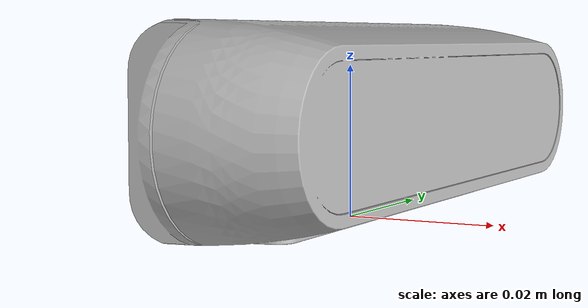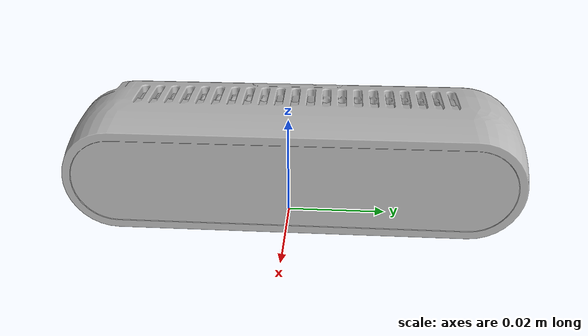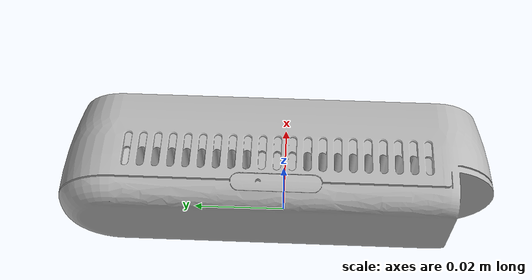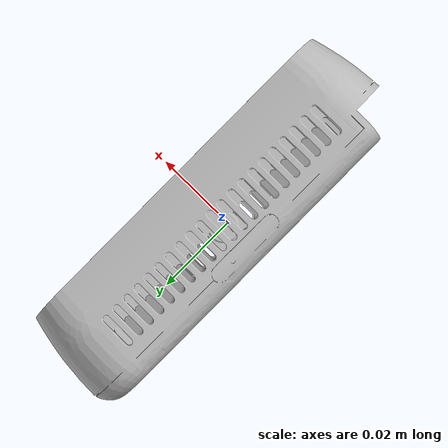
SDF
<?xml version="1.0"?>
<sdf version='1.6'>
  <model name='D435'>
    <pose frame="">0 0 0.015 0 0 0</pose>
    <link name="link">
      <inertial>
        <mass>0.07</mass>
        <inertia>
          <ixx>0.0000508</ixx>
          <iyy>0.00000729167</iyy>
          <izz>0.0000508</izz>
        </inertia>
        <pose frame=''>0 0 0 0 -0 0</pose>
      </inertial>
      <self_collide>0</self_collide>
      <enable_wind>0</enable_wind>
      <kinematic>0</kinematic>
      <gravity>1</gravity>
      <visual name="visual">
        <geometry>
          <mesh>
            <uri>model://d435/meshes/d435.dae</uri>
          </mesh>
        </geometry>
        <pose>0 0 0 0 0 1.57</pose>
      </visual>
      <sensor name="color" type="camera">
        <pose frame="">0 0.03 0.00 0 0 0</pose>
        <camera name="__default__">
          <horizontal_fov>1.047</horizontal_fov>
          <image>
            <width>640</width>
            <height>480</height>
            <format>RGB_INT8</format>
          </image>
          <clip>
            <near>0.1</near>
            <far>100</far>
          </clip>
          <noise>
            <type>gaussian</type>
            <mean>0.0</mean>
            <stddev>0.007</stddev>
          </noise>
        </camera>
        <always_on>1</always_on>
        <update_rate>15</update_rate>
        <visualize>1</visualize>
      </sensor>
      <sensor name="depth" type="depth">
        <pose frame="">0 0.03 0.00 0 0 0</pose>
        <camera name="camera">
          <horizontal_fov>1.047</horizontal_fov>
          <image>
            <width>640</width>
            <height>480</height>
          </image>
          <clip>
            <near>0.1</near>
            <far>100</far>
          </clip>
          <noise>
            <type>gaussian</type>
            <mean>0.0</mean>
            <stddev>0.007</stddev>
          </noise>
          <depth_camera>
            <output>points</output>
          </depth_camera>
        </camera>
        <always_on>1</always_on>
        <update_rate>15</update_rate>
        <visualize>0</visualize>
        <plugin name="MaavCameraPlugin" filename="libMaavCameraPlugin.so"></plugin>
      </sensor>
    </link>
  </model>
</sdf>
